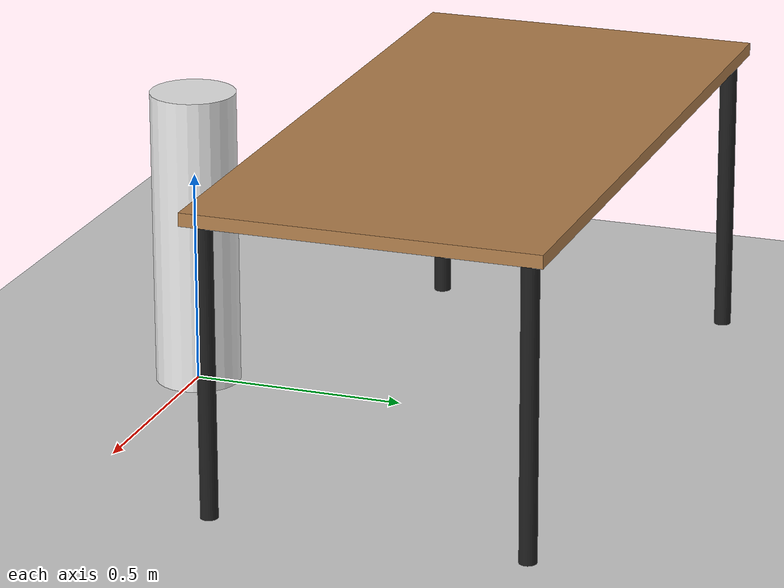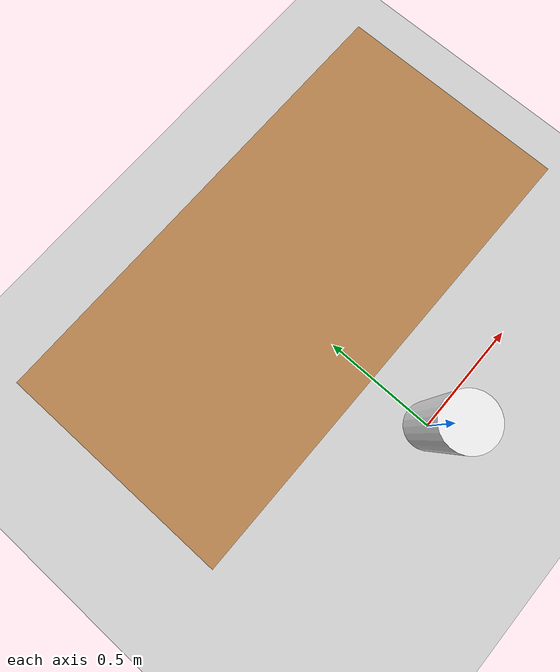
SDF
<?xml version="1.0" ?>
<sdf version='1.6'>
  <world name='default'>

    <light name='sun' type='directional'>
      <cast_shadows>1</cast_shadows>
      <pose frame=''>0 0 10 0 -0 0</pose>
      <diffuse>0.8 0.8 0.8 1</diffuse>
      <specular>0.2 0.2 0.2 1</specular>
      <attenuation>
        <range>1000</range>
        <constant>0.9</constant>
        <linear>0.01</linear>
        <quadratic>0.001</quadratic>
      </attenuation>
      <direction>-0.5 0.1 -0.9</direction>
    </light>

    <model name='ground_plane'>
      <static>1</static>
      <link name='link'>
        <collision name='collision'>
          <geometry>
            <plane>
              <normal>0 0 1</normal>
              <size>100 100</size>
            </plane>
          </geometry>
          <surface>
            <contact>
              <collide_bitmask>65535</collide_bitmask>
              <ode/>
            </contact>
            <friction>
              <ode>
                <mu>100</mu>
                <mu2>50</mu2>
              </ode>
              <torsional>
                <ode/>
              </torsional>
            </friction>
            <bounce/>
          </surface>
          <max_contacts>10</max_contacts>
        </collision>
        <visual name='visual'>
          <cast_shadows>0</cast_shadows>
          <geometry>
            <plane>
              <normal>0 0 1</normal>
              <size>100 100</size>
            </plane>
          </geometry>
          <material>
            <script>
              <uri>file://media/materials/scripts/gazebo.material</uri>
              <name>Gazebo/Grey</name>
            </script>
          </material>
        </visual>
        <self_collide>0</self_collide>
        <enable_wind>0</enable_wind>
        <kinematic>0</kinematic>
      </link>
    </model>

    <gravity>0 0 -9.8</gravity>

    <magnetic_field>6e-06 2.3e-05 -4.2e-05</magnetic_field>

    <atmosphere type='adiabatic'/>

    <physics name='default_physics' default='0' type='ode'>
      <ode>
        <solver>
          <type>quick</type>
          <iters>100</iters>
          <precon_iters>0</precon_iters>
          <sor>1</sor>
          <use_dynamic_moi_rescaling>0</use_dynamic_moi_rescaling>
        </solver>
        <constraints>
          <cfm>0</cfm>
          <erp>0.5</erp>
          <contact_max_correcting_vel>1000</contact_max_correcting_vel>
          <contact_surface_layer>0</contact_surface_layer>
        </constraints>
      </ode>
      <max_step_size>0.001</max_step_size>
      <real_time_factor>1</real_time_factor>
      <real_time_update_rate>1000</real_time_update_rate>
    </physics>

    <scene>
      <ambient>0.4 0.4 0.4 1</ambient>
      <background>0.7 0.7 0.7 1</background>
      <shadows>1</shadows>
    </scene>

    <audio>
      <device>default</device>
    </audio>

    <wind/>

    <spherical_coordinates>
      <surface_model>EARTH_WGS84</surface_model>
      <latitude_deg>0</latitude_deg>
      <longitude_deg>0</longitude_deg>
      <elevation>0</elevation>
      <heading_deg>0</heading_deg>
    </spherical_coordinates>

    <gui fullscreen='0'>
      <camera name='user_camera'>
        <pose frame=''>1.42646 1.47561 2.04981 -0 0.539643 -2.73981</pose>
        <view_controller>orbit</view_controller>
        <projection_type>perspective</projection_type>
      </camera>
    </gui>

    <include>
      <uri>model://table</uri>
      <name>Table B</name>
      <pose frame=''>0.0 0.7 0 0 0 0</pose>
      <static>true</static>
    </include>

    <include>
      <uri>model://pillar</uri>
      <name>A pillar</name>
      <pose frame=''>0 0 0 0 0 0</pose>
      <static>true</static>
    </include>

  </world>
</sdf>

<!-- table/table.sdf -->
<!-- |    This document was autogenerated by xacro from table.sdf.xacro                | -->
<!-- |    EDITING THIS FILE BY HAND IS NOT RECOMMENDED                                 | -->
<sdf version="1.5" xmlns:xacro="http://www.ros.org/wiki/xacro">
  <model name="table">
    <static>true</static>
    <link name="link">
      <collision name="leg_SE">
        <pose>-0.76 -0.36 0.335 0 0 0</pose>
        <geometry>
          <cylinder>
            <radius>0.02</radius>
            <length>0.67</length>
          </cylinder>
        </geometry>
        <max_contacts>10</max_contacts>
      </collision>
      <visual name="leg_SE">
        <pose>-0.76 -0.36 0.335 0 0 0</pose>
        <geometry>
          <cylinder>
            <radius>0.02</radius>
            <length>0.67</length>
          </cylinder>
        </geometry>
        <material>
          <script>
            <name>Gazebo/Black</name>
          </script>
        </material>
      </visual>
      <collision name="leg_NE">
        <pose>-0.76 0.36 0.335 0 0 0</pose>
        <geometry>
          <cylinder>
            <radius>0.02</radius>
            <length>0.67</length>
          </cylinder>
        </geometry>
        <max_contacts>10</max_contacts>
      </collision>
      <visual name="leg_NE">
        <pose>-0.76 0.36 0.335 0 0 0</pose>
        <geometry>
          <cylinder>
            <radius>0.02</radius>
            <length>0.67</length>
          </cylinder>
        </geometry>
        <material>
          <script>
            <name>Gazebo/Black</name>
          </script>
        </material>
      </visual>
      <collision name="leg_NW">
        <pose>0.76 0.36 0.335 0 0 0</pose>
        <geometry>
          <cylinder>
            <radius>0.02</radius>
            <length>0.67</length>
          </cylinder>
        </geometry>
        <max_contacts>10</max_contacts>
      </collision>
      <visual name="leg_NW">
        <pose>0.76 0.36 0.335 0 0 0</pose>
        <geometry>
          <cylinder>
            <radius>0.02</radius>
            <length>0.67</length>
          </cylinder>
        </geometry>
        <material>
          <script>
            <name>Gazebo/Black</name>
          </script>
        </material>
      </visual>
      <collision name="leg_SW">
        <pose>0.76 -0.36 0.335 0 0 0</pose>
        <geometry>
          <cylinder>
            <radius>0.02</radius>
            <length>0.67</length>
          </cylinder>
        </geometry>
        <max_contacts>10</max_contacts>
      </collision>
      <visual name="leg_SW">
        <pose>0.76 -0.36 0.335 0 0 0</pose>
        <geometry>
          <cylinder>
            <radius>0.02</radius>
            <length>0.67</length>
          </cylinder>
        </geometry>
        <material>
          <script>
            <name>Gazebo/Black</name>
          </script>
        </material>
      </visual>
      <collision name="top">
        <pose>0 0 0.685 0 0 0</pose>
        <geometry>
          <box>
            <size>1.6 0.8 0.03</size>
          </box>
        </geometry>
        <surface>
          <friction>
            <ode>
              <mu>1000</mu>
              <mu2>1000</mu2>
            </ode>
            <torsional>
              <ode/>
            </torsional>
          </friction>
          <contact>
            <ode/>
          </contact>
          <bounce/>
        </surface>
      </collision>
      <visual name="top">
        <pose>0 0 0.685 0 0 0</pose>
        <geometry>
          <box>
            <size>1.6 0.8 0.03</size>
          </box>
        </geometry>
        <material>
          <script>
            <name>Gazebo/Wood</name>
          </script>
        </material>
      </visual>
    </link>
  </model>
</sdf>

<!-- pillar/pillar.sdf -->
<!-- |    This document was autogenerated by xacro from pillar.sdf.xacro               | -->
<!-- |    EDITING THIS FILE BY HAND IS NOT RECOMMENDED                                 | -->
<sdf version="1.5" xmlns:xacro="http://www.ros.org/wiki/xacro">
  <model name="pillar">
    <static>true</static>
    <link name="pillar">
      <collision name="pillar">
        <geometry>
          <cylinder>
            <radius>0.1</radius>
            <length>0.7</length>
          </cylinder>
        </geometry>
        <pose>0 0 0.35 0 0 0</pose>
      </collision>
      <visual name="pillar">
        <geometry>
          <cylinder>
            <radius>0.1</radius>
            <length>0.7</length>
          </cylinder>
        </geometry>
        <pose>0 0 0.35 0 0 0</pose>
        <material>
          <script>
            <name>Gazebo/White</name>
          </script>
        </material>
      </visual>
    </link>
  </model>
</sdf>
